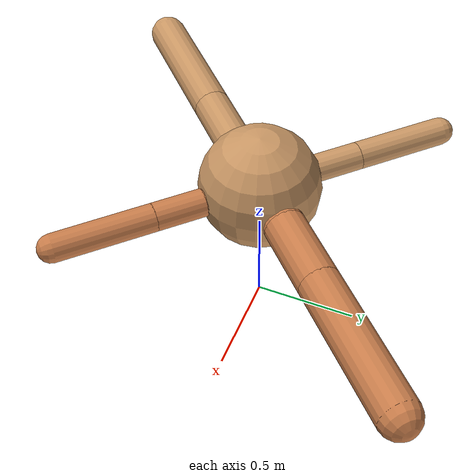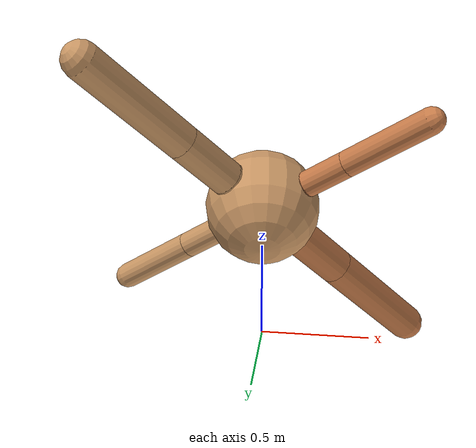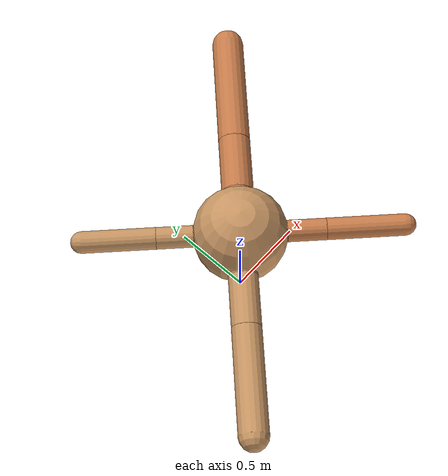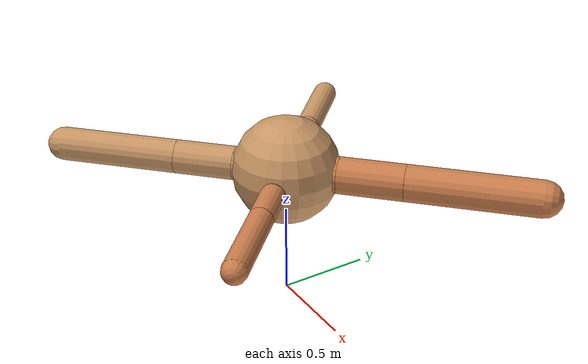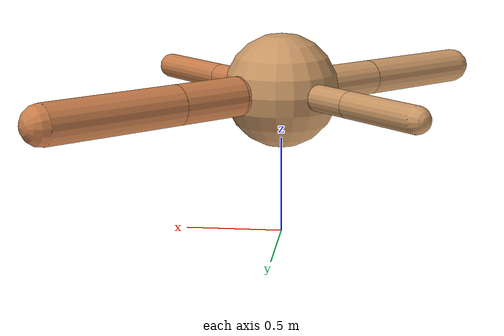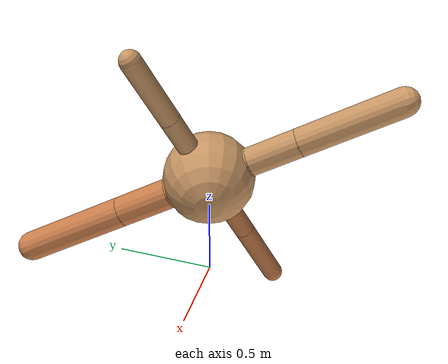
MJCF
<?xml version="1.0" ?>
<mujoco model="ant">

	<compiler angle="degree" coordinate="local" inertiafromgeom="true"/>

	<option integrator="RK4" timestep="0.01"/>

	<custom>

		<numeric data="0.0 0.0 0.55 1.0 0.0 0.0 0.0 0.0 1.0 0.0 -1.0 0.0 -1.0 0.0 1.0" name="init_qpos"/>

	</custom>

	<default>

		<joint armature="1" damping="1" limited="true"/>

		<geom conaffinity="0" condim="3" density="5.0" friction="1.5 0.1 0.1" margin="0.01" rgba="0.8 0.6 0.4 1"/>

	</default>

	<worldbody>

		<body name="torso" pos="0 0 0.75">

			<geom name="torso_geom" pos="0 0 0" size="0.2923572835343879" type="sphere"/>

			<!--joint armature="0" damping="0" limited="false" margin="0.01" name="root" pos="0 0 0" type="free"/-->

			<body name="front_left_leg" pos="0 0 0">

				<geom fromto="0 0 0 0.2 0.2 0" name="aux_1_geom" size="0.09943473097894462" type="capsule" rgba=".8 .5 .3 1"/>

				<body name="aux_1" pos="0.2 0.2 0">

					<joint axis="0 0 1" name="hip_1" pos="0.0 0.0 0.0" range="-40 40" type="hinge"/>

					<geom fromto="0 0 0 0.2529151546920038 0.2529151546920038 0" name="left_leg_geom" size="0.09943473097894462" type="capsule" rgba=".8 .5 .3 1"/>

					<body pos="0.2529151546920038 0.2529151546920038 0" name="front_left_foot">

						<joint axis="-1 1 0" name="ankle_1" pos="0.0 0.0 0.0" range="30 100" type="hinge"/>

						<geom fromto="0 0 0 0.5058303093840076 0.5058303093840076 0" name="left_ankle_geom" size="0.09943473097894462" type="capsule" rgba=".8 .5 .3 1"/>

					</body>

				</body>

			</body>

			<body name="front_right_leg" pos="0 0 0">

				<geom fromto="0 0 0 -0.2 0.2 0" name="aux_2_geom" size="0.06675671730667278" type="capsule"/>

				<body name="aux_2" pos="-0.2 0.2 0">

					<joint axis="0 0 1" name="hip_2" pos="0.0 0.0 0.0" range="-40 40" type="hinge"/>

					<geom fromto="0 0 0 -0.15887775056083808 0.15887775056083808 0" name="right_leg_geom" size="0.06675671730667278" type="capsule"/>

					<body pos="-0.15887775056083808 0.15887775056083808 0" name="front_right_foot">

						<joint axis="1 1 0" name="ankle_2" pos="0.0 0.0 0.0" range="-100 -30" type="hinge"/>

						<geom fromto="0 0 0 -0.31775550112167616 0.31775550112167616 0" name="right_ankle_geom" size="0.06675671730667278" type="capsule"/>

					</body>

				</body>

			</body>

			<body name="left_back_leg" pos="0 0 0">

				<geom fromto="0 0 0 -0.2 -0.2 0" name="aux_3_geom" size="0.09146981666060375" type="capsule"/>

				<body name="aux_3" pos="-0.2 -0.2 0">

					<joint axis="0 0 1" name="hip_3" pos="0.0 0.0 0.0" range="-40 40" type="hinge"/>

					<geom fromto="0 0 0 -0.23024709821668027 -0.23024709821668027 0" name="back_leg_geom" size="0.09146981666060375" type="capsule"/>

					<body pos="-0.23024709821668027 -0.23024709821668027 0" name="left_back_foot">

						<joint axis="-1 1 0" name="ankle_3" pos="0.0 0.0 0.0" range="-100 -30" type="hinge"/>

						<geom fromto="0 0 0 -0.46049419643336054 -0.46049419643336054 0" name="third_ankle_geom" size="0.09146981666060375" type="capsule"/>

					</body>

				</body>

			</body>

			<body name="right_back_leg" pos="0 0 0">

				<geom fromto="0 0 0 0.2 -0.2 0" name="aux_4_geom" size="0.06673297606123765" type="capsule" rgba=".8 .5 .3 1"/>

				<body name="aux_4" pos="0.2 -0.2 0">

					<joint axis="0 0 1" name="hip_4" pos="0.0 0.0 0.0" range="-40 40" type="hinge"/>

					<geom fromto="0 0 0 0.16916595241972746 -0.16916595241972746 0" name="rightback_leg_geom" size="0.06673297606123765" type="capsule" rgba=".8 .5 .3 1"/>

					<body pos="0.16916595241972746 -0.16916595241972746 0" name="right_back_foot">

						<joint axis="1 1 0" name="ankle_4" pos="0.0 0.0 0.0" range="30 100" type="hinge"/>

						<geom fromto="0 0 0 0.3383319048394549 -0.3383319048394549 0" name="fourth_ankle_geom" size="0.06673297606123765" type="capsule" rgba=".8 .5 .3 1"/>

					</body>

				</body>

			</body>

		</body>

	</worldbody>

	<actuator>

		<motor ctrllimited="true" ctrlrange="-1.0 1.0" joint="hip_4" gear="150"/>

		<motor ctrllimited="true" ctrlrange="-1.0 1.0" joint="ankle_4" gear="150"/>

		<motor ctrllimited="true" ctrlrange="-1.0 1.0" joint="hip_1" gear="150"/>

		<motor ctrllimited="true" ctrlrange="-1.0 1.0" joint="ankle_1" gear="150"/>

		<motor ctrllimited="true" ctrlrange="-1.0 1.0" joint="hip_2" gear="150"/>

		<motor ctrllimited="true" ctrlrange="-1.0 1.0" joint="ankle_2" gear="150"/>

		<motor ctrllimited="true" ctrlrange="-1.0 1.0" joint="hip_3" gear="150"/>

		<motor ctrllimited="true" ctrlrange="-1.0 1.0" joint="ankle_3" gear="150"/>

	</actuator>

</mujoco>
